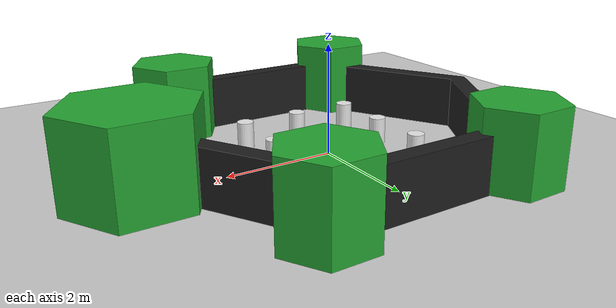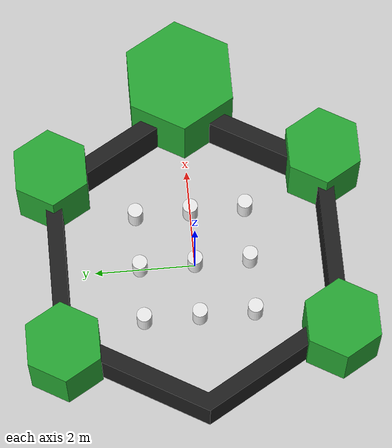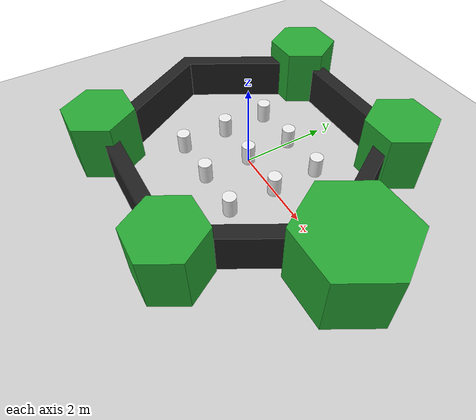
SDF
<sdf version="1.7">
 <world name="default">
  <model name="ground_plane">
   <static>1</static>
   <link name="link">
    <collision name="collision">
     <geometry><plane><normal>0 0 1</normal><size>100 100</size></plane></geometry>
     <surface>
      <contact><collide_bitmask>65535</collide_bitmask></contact>
      <friction><ode><mu>100</mu><mu2>50</mu2></ode></friction>
     </surface>
    </collision>
    <visual name="visual">
     <cast_shadows>0</cast_shadows>
     <geometry><plane><normal>0 0 1</normal><size>100 100</size></plane></geometry>
     <material>
      <script><uri>file://media/materials/scripts/gazebo.material</uri><name>Gazebo/Grey</name></script>
     </material>
    </visual>
   </link>
  </model>
  <model name="ros_symbol">
   <static>1</static>
   <link name="symbol">
    <collision name="one_one">
     <pose>-1.1 -1.1 0.25 0 -0 0</pose>
     <geometry><cylinder><radius>0.15</radius><length>0.5</length></cylinder></geometry>
    </collision>
    <visual name="one_one">
     <pose>-1.1 -1.1 0.25 0 -0 0</pose>
     <geometry><cylinder><radius>0.15</radius><length>0.5</length></cylinder></geometry>
     <material>
      <script><uri>file://media/materials/scripts/gazebo.material</uri><name>Gazebo/White</name></script>
     </material>
    </visual>
    <collision name="one_two">
     <pose>-1.1 0 0.25 0 -0 0</pose>
     <geometry><cylinder><radius>0.15</radius><length>0.5</length></cylinder></geometry>
    </collision>
    <visual name="one_two">
     <pose>-1.1 0 0.25 0 -0 0</pose>
     <geometry><cylinder><radius>0.15</radius><length>0.5</length></cylinder></geometry>
     <material>
      <script><uri>file://media/materials/scripts/gazebo.material</uri><name>Gazebo/White</name></script>
     </material>
    </visual>
    <collision name="one_three">
     <pose>-1.1 1.1 0.25 0 -0 0</pose>
     <geometry><cylinder><radius>0.15</radius><length>0.5</length></cylinder></geometry>
    </collision>
    <visual name="one_three">
     <pose>-1.1 1.1 0.25 0 -0 0</pose>
     <geometry><cylinder><radius>0.15</radius><length>0.5</length></cylinder></geometry>
     <material>
      <script><uri>file://media/materials/scripts/gazebo.material</uri><name>Gazebo/White</name></script>
     </material>
    </visual>
    <collision name="two_one">
     <pose>0 -1.1 0.25 0 -0 0</pose>
     <geometry><cylinder><radius>0.15</radius><length>0.5</length></cylinder></geometry>
    </collision>
    <visual name="two_one">
     <pose>0 -1.1 0.25 0 -0 0</pose>
     <geometry><cylinder><radius>0.15</radius><length>0.5</length></cylinder></geometry>
     <material>
      <script><uri>file://media/materials/scripts/gazebo.material</uri><name>Gazebo/White</name></script>
     </material>
    </visual>
    <collision name="two_two">
     <pose>0 0 0.25 0 -0 0</pose>
     <geometry><cylinder><radius>0.15</radius><length>0.5</length></cylinder></geometry>
    </collision>
    <visual name="two_two">
     <pose>0 0 0.25 0 -0 0</pose>
     <geometry><cylinder><radius>0.15</radius><length>0.5</length></cylinder></geometry>
     <material>
      <script><uri>file://media/materials/scripts/gazebo.material</uri><name>Gazebo/White</name></script>
     </material>
    </visual>
    <collision name="two_three">
     <pose>0 1.1 0.25 0 -0 0</pose>
     <geometry><cylinder><radius>0.15</radius><length>0.5</length></cylinder></geometry>
    </collision>
    <visual name="two_three">
     <pose>0 1.1 0.25 0 -0 0</pose>
     <geometry><cylinder><radius>0.15</radius><length>0.5</length></cylinder></geometry>
     <material>
      <script><uri>file://media/materials/scripts/gazebo.material</uri><name>Gazebo/White</name></script>
     </material>
    </visual>
    <collision name="three_one">
     <pose>1.1 -1.1 0.25 0 -0 0</pose>
     <geometry><cylinder><radius>0.15</radius><length>0.5</length></cylinder></geometry>
    </collision>
    <visual name="three_one">
     <pose>1.1 -1.1 0.25 0 -0 0</pose>
     <geometry><cylinder><radius>0.15</radius><length>0.5</length></cylinder></geometry>
     <material>
      <script><uri>file://media/materials/scripts/gazebo.material</uri><name>Gazebo/White</name></script>
     </material>
    </visual>
    <collision name="three_two">
     <pose>1.1 0 0.25 0 -0 0</pose>
     <geometry><cylinder><radius>0.15</radius><length>0.5</length></cylinder></geometry>
    </collision>
    <visual name="three_two">
     <pose>1.1 0 0.25 0 -0 0</pose>
     <geometry><cylinder><radius>0.15</radius><length>0.5</length></cylinder></geometry>
     <material>
      <script><uri>file://media/materials/scripts/gazebo.material</uri><name>Gazebo/White</name></script>
     </material>
    </visual>
    <collision name="three_three">
     <pose>1.1 1.1 0.25 0 -0 0</pose>
     <geometry><cylinder><radius>0.15</radius><length>0.5</length></cylinder></geometry>
    </collision>
    <visual name="three_three">
     <pose>1.1 1.1 0.25 0 -0 0</pose>
     <geometry><cylinder><radius>0.15</radius><length>0.5</length></cylinder></geometry>
     <material>
      <script><uri>file://media/materials/scripts/gazebo.material</uri><name>Gazebo/White</name></script>
     </material>
    </visual>
    <collision name="head">
     <pose>3.5 0 -0.5 0 -0 0</pose>
     <geometry>
      <mesh><uri>model://turtlebot3_world/meshes/hexagon.dae</uri><scale>0.8 0.8 0.8</scale></mesh>
     </geometry>
    </collision>
    <visual name="head">
     <pose>3.5 0 -0.5 0 -0 0</pose>
     <geometry>
      <mesh><uri>model://turtlebot3_world/meshes/hexagon.dae</uri><scale>0.8 0.8 0.8</scale></mesh>
     </geometry>
     <material>
      <script><uri>file://media/materials/scripts/gazebo.material</uri><name>Gazebo/Green</name></script>
     </material>
    </visual>
    <collision name="left_hand">
     <pose>1.8 2.7 0 0 -0 0</pose>
     <geometry>
      <mesh><uri>model://turtlebot3_world/meshes/hexagon.dae</uri><scale>0.55 0.55 0.55</scale></mesh>
     </geometry>
    </collision>
    <visual name="left_hand">
     <pose>1.8 2.7 0 0 -0 0</pose>
     <geometry>
      <mesh><uri>model://turtlebot3_world/meshes/hexagon.dae</uri><scale>0.55 0.55 0.55</scale></mesh>
     </geometry>
     <material>
      <script><uri>file://media/materials/scripts/gazebo.material</uri><name>Gazebo/Green</name></script>
     </material>
    </visual>
    <collision name="right_hand">
     <pose>1.8 -2.7 0 0 -0 0</pose>
     <geometry>
      <mesh><uri>model://turtlebot3_world/meshes/hexagon.dae</uri><scale>0.55 0.55 0.55</scale></mesh>
     </geometry>
    </collision>
    <visual name="right_hand">
     <pose>1.8 -2.7 0 0 -0 0</pose>
     <geometry>
      <mesh><uri>model://turtlebot3_world/meshes/hexagon.dae</uri><scale>0.55 0.55 0.55</scale></mesh>
     </geometry>
     <material>
      <script><uri>file://media/materials/scripts/gazebo.material</uri><name>Gazebo/Green</name></script>
     </material>
    </visual>
    <collision name="left_foot">
     <pose>-1.8 2.7 0 0 -0 0</pose>
     <geometry>
      <mesh><uri>model://turtlebot3_world/meshes/hexagon.dae</uri><scale>0.55 0.55 0.55</scale></mesh>
     </geometry>
    </collision>
    <visual name="left_foot">
     <pose>-1.8 2.7 0 0 -0 0</pose>
     <geometry>
      <mesh><uri>model://turtlebot3_world/meshes/hexagon.dae</uri><scale>0.55 0.55 0.55</scale></mesh>
     </geometry>
     <material>
      <script><uri>file://media/materials/scripts/gazebo.material</uri><name>Gazebo/Green</name></script>
     </material>
    </visual>
    <collision name="right_foot">
     <pose>-1.8 -2.7 0 0 -0 0</pose>
     <geometry>
      <mesh><uri>model://turtlebot3_world/meshes/hexagon.dae</uri><scale>0.55 0.55 0.55</scale></mesh>
     </geometry>
    </collision>
    <visual name="right_foot">
     <pose>-1.8 -2.7 0 0 -0 0</pose>
     <geometry>
      <mesh><uri>model://turtlebot3_world/meshes/hexagon.dae</uri><scale>0.55 0.55 0.55</scale></mesh>
     </geometry>
     <material>
      <script><uri>file://media/materials/scripts/gazebo.material</uri><name>Gazebo/Green</name></script>
     </material>
    </visual>
    <collision name="body">
     <pose>0 0 -0.3 0 0 -1.5708</pose>
     <geometry>
      <mesh><uri>model://turtlebot3_world/meshes/wall.dae</uri><scale>0.25 0.25 0.25</scale></mesh>
     </geometry>
    </collision>
    <visual name="body">
     <pose>0 0 -0.3 0 0 -1.5708</pose>
     <geometry>
      <mesh><uri>model://turtlebot3_world/meshes/wall.dae</uri><scale>0.25 0.25 0.25</scale></mesh>
     </geometry>
     <material>
      <script><uri>file://media/materials/scripts/gazebo.material</uri><name>Gazebo/FlatBlack</name></script>
     </material>
    </visual>
   </link>
  </model>
 </world>
</sdf>
